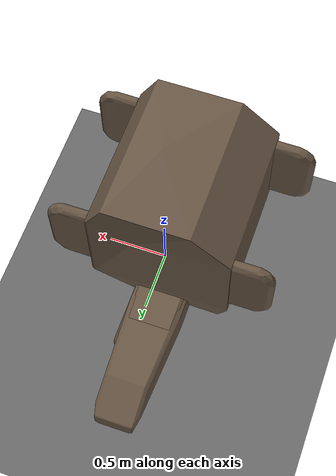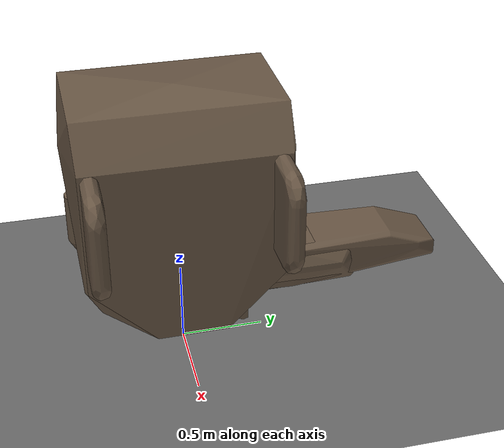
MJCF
<mujoco model="build">
    <compiler angle="degree" meshdir="assets"/>

    <option iterations="1" timestep="0.001"/>
    <custom>
        <!-- brax custom params -->
        <numeric data="2500" name="constraint_limit_stiffness"/>
        <numeric data="27000" name="constraint_stiffness"/>
        <numeric data="30" name="constraint_ang_damping"/>
        <numeric data="80" name="constraint_vel_damping"/>
        <numeric data="-0.05" name="ang_damping"/>
        <numeric data="0.5" name="joint_scale_pos"/>
        <numeric data="0.1" name="joint_scale_ang"/>
        <numeric data="0" name="spring_mass_scale"/>
        <numeric data="1" name="spring_inertia_scale"/>
        <numeric data="20" name="matrix_inv_iterations"/>
        <numeric data="15" name="solver_maxls"/>
    </custom>

    <asset>
        <material name="black" rgba="0.2 0.2 0.2 1"/>

        <texture builtin="gradient" height="100" rgb1=".4 .5 .6" rgb2="0 0 0" type="skybox" width="100"/>
        <texture builtin="checker" height="100" name="texplane" rgb1="0 0 0" rgb2="0.8 0.8 0.8" type="2d" width="100"/>
        <material name="MatPlane" reflectance="0.5" shininess="1" specular="1" texrepeat="60 60" texture="texplane"/>

        <mesh name="body" file="body.stl"/>
        <mesh file="ll1.stl"/>
        <mesh file="ll2.stl"/>
        <mesh file="ll3.stl"/>
        <mesh file="ll4.stl"/>
        <mesh file="ll5.stl"/>
        <mesh file="ll6.stl"/>
        <mesh file="rl1.stl"/>
        <mesh file="rl2.stl"/>
        <mesh file="rl3.stl"/>
        <mesh file="rl4.stl"/>
        <mesh file="rl5.stl"/>
        <mesh file="rl6.stl"/>
        <mesh name="la1" file="la1.stl"/>
        <mesh name="la2" file="la2.stl"/>
        <mesh name="la3" file="la3.stl"/>
        <mesh file="ra1.stl"/>
        <mesh file="ra2.stl"/>
        <mesh file="ra3.stl"/>
        <mesh name="h1" file="h1.stl"/>
        <mesh name="h2" file="h2.stl"/>
        <mesh name="bodyc" file="simplified_convex_decimated/body.stl"/>
        <mesh name="body1c" file="simplified_convex_decimated/body_sub1.stl"/>
        <mesh name="body2c" file="simplified_convex_decimated/body_sub2.stl"/>
        <mesh name="body3c" file="simplified_convex_decimated/body_sub3.stl"/>
        <mesh name="body4c" file="simplified_convex_decimated/body_sub4.stl"/>
        <mesh name="ll1c" file="simplified_convex_decimated/ll1.stl"/>
        <mesh name="ll2c" file="simplified_convex_decimated/ll2.stl"/>
        <mesh name="ll3c" file="simplified_convex_decimated/ll3.stl"/>
        <mesh name="ll4c" file="simplified_convex_decimated/ll4.stl"/>
        <mesh name="ll5c" file="simplified_convex_decimated/ll5.stl"/>
        <mesh name="ll6c" file="simplified_convex_decimated/ll6.stl"/>
        <mesh name="rl1c" file="simplified_convex_decimated/rl1.stl"/>
        <mesh name="rl2c" file="simplified_convex_decimated/rl2.stl"/>
        <mesh name="rl3c" file="simplified_convex_decimated/rl3.stl"/>
        <mesh name="rl4c" file="simplified_convex_decimated/rl4.stl"/>
        <mesh name="rl5c" file="simplified_convex_decimated/rl5.stl"/>
        <mesh name="rl6c" file="simplified_convex_decimated/rl6.stl"/>
        <mesh name="la1c" file="simplified_convex_decimated/la1.stl"/>
        <mesh name="la2c" file="simplified_convex_decimated/la2.stl"/>
        <mesh name="la3c" file="simplified_convex_decimated/la3.stl"/>
        <mesh name="ra1c" file="simplified_convex_decimated/ra1.stl"/>
        <mesh name="ra2c" file="simplified_convex_decimated/ra2.stl"/>
        <mesh name="ra3c" file="simplified_convex_decimated/ra3.stl"/>
        <mesh name="h1c" file="simplified_convex_decimated/h1.stl"/>
        <mesh name="h2c" file="simplified_convex_decimated/h2.stl"/>
        <mesh name="h21c" file="simplified_convex_decimated/h2_sub1.stl"/>
        <mesh name="h22c" file="simplified_convex_decimated/h2_sub2.stl"/>
    </asset>

    <default>
        <joint armature="1" damping="1" limited="true"/>
        <geom conaffinity="0" condim="3" contype="1" type='box' rgba="0.4 0.33 0.26 1.0" size="1 1 1"/>
        <mesh scale="0.01 0.01 0.01"/>
        <motor ctrllimited="true" ctrlrange="-.4 .4"/>
        <default class="visual">
            <geom material="black" contype="0" conaffinity="0" group="2"/>
        </default>
        <default class="collision">
            <geom material="black" contype="1" conaffinity="1" group="1"/>
        </default>
    </default>

    <worldbody>
        <light cutoff="100" diffuse="1 1 1" dir="-0 0 -1.3" directional="true" exponent="1" pos="0 0 1.3" specular=".1 .1 .1"/>
        <geom conaffinity="1" condim="3" friction="1 .1 .1" material="MatPlane" name="floor" pos="0 0 0" size="100 100 0.125" type="plane" rgba="0.5 0.5 0.5 1.0"/>
        <body name='body' pos='0 0 0.3'>
            <freejoint/>
            <inertial pos="0 0 1" quat="0.704708 0.704003 0.0667707 -0.0575246" mass="1.34928" diaginertia="0.00341264 0.00316574 0.00296931"/>
            <geom type="mesh" mesh="bodyc" class="collision"/>
            <geom type="mesh" mesh="body1c" class="collision"/>
            <geom type="mesh" mesh="body2c" class="collision"/>
            <geom type="mesh" mesh="body3c" class="collision"/>
            <geom type="mesh" mesh="body4c" class="collision"/>
            <site name="torso"/>
            <body name="head_pan_link" pos="-0.001 0 0.1365">
                <inertial pos="0.00233 0 0.00823" quat="0.663575 0.663575 0.244272 -0.244272" mass="0.01176" diaginertia="4.23401e-06 3.60599e-06 1.65e-06"/>
                <joint name="head_pan" axis="0 0 1" range="-45 45"/>
                <geom type="mesh" mesh="h1c" class="collision"/>
                <body name="head_tilt_link" pos="0.01 0.019 0.0285">
                    <inertial pos="0.0023 -0.01863 0.0277" quat="0.997312 0.00973825 0.0726131 -0.00102702" mass="0.13631" diaginertia="0.000107452 8.72266e-05 4.39413e-05"/>
                    <joint name="head_tilt" axis="0 -1 0" range="-20 20"/>
                    <geom type="mesh" mesh="h2c" class="collision" contype="1"/>
                    <geom type="mesh" mesh="h21c" class="collision" contype="1"/>
                    <geom type="mesh" mesh="h22c" class="collision" contype="1"/>
                </body>
            </body>
            <body name="l_sho_pitch_link" pos="-0.001 0.06 0.111">
                <inertial pos="0 0.00823 -0.00233" quat="0.244272 0.663575 0.244272 0.663575" mass="0.01176" diaginertia="4.23401e-06 3.60599e-06 1.65e-06"/>
                <joint name="l_sho_pitch" axis="0 1 0" range="-90 90"/>
                <geom type="mesh" mesh="la1c" class="collision"/>
                <body name="l_sho_roll_link" pos="0.019 0.0285 -0.01">
                    <inertial pos="-0.01844 0.04514 0.00028" quat="0.501853 0.50038 -0.498173 0.499588" mass="0.17758" diaginertia="0.000234742 0.00022804 3.04183e-05"/>
                    <joint name="l_sho_roll" axis="-1 0 0" range="0 45"/>
                    <geom type="mesh" mesh="la2c" class="collision"/>
                    <body name="l_el_link" pos="0 0.0904 -0.0001">
                        <inertial pos="-0.019 0.07033 0.0038" quat="0.483289 0.51617 -0.51617 0.483289" mass="0.04127" diaginertia="6.8785e-05 6.196e-05 1.2065e-05"/>
                        <joint name="l_el" axis="1 0 0" range="0 90"/>
                        <geom type="mesh" mesh="la3c" class="collision"/>
                    </body>
                </body>
            </body>

        </body>
    </worldbody>

</mujoco>
